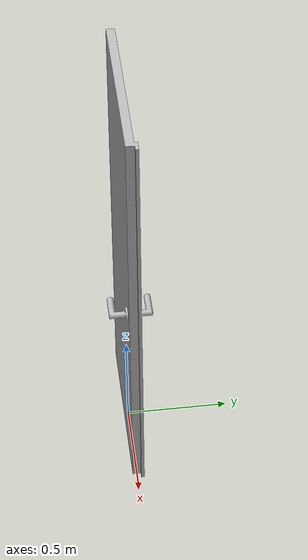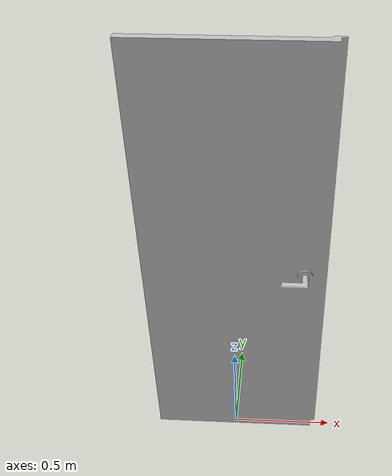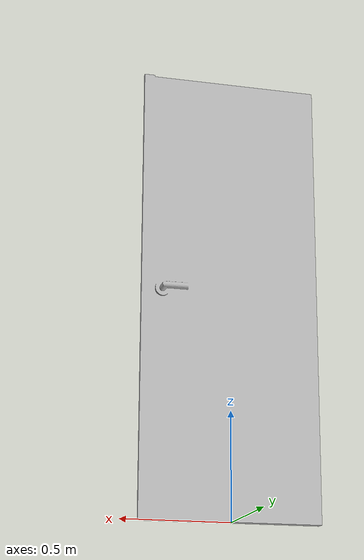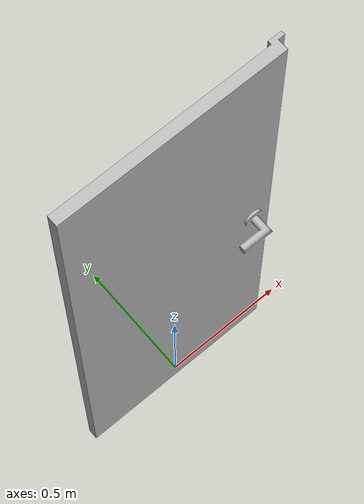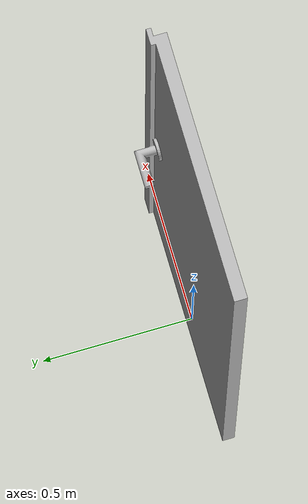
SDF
<?xml version="1.0"?>
<sdf version="1.4">
<model name="dvere_80_sklikou">
	<pose>0 0 0 0 0 0</pose>
	<static>true</static>
	<link name="dvere_80_sklikou_collision">
		<collision name="dvere_80_sklikou_collision">
		<geometry>
			<mesh>
				<uri>model://dvere_80_sklikou/meshes/model.dae</uri>

			</mesh>
		</geometry>
		</collision>
	<visual name="dvere_80_sklikou_mesh">
	<cast_shadows>false</cast_shadows>
		<geometry>
			<mesh>
				<uri> model://dvere_80_sklikou/meshes/model.dae</uri>

			</mesh>
		</geometry>
		<material>
		<script>
			<uri> model://dvere_80_sklikou/material/scripts</uri>
			<uri> model://dvere_80_sklikou/material/textures</uri>
			<name>dvere_80_sklikou/Diffuse</name>
		</script>
		</material>

	</visual>
</link>
</model>
</sdf>
